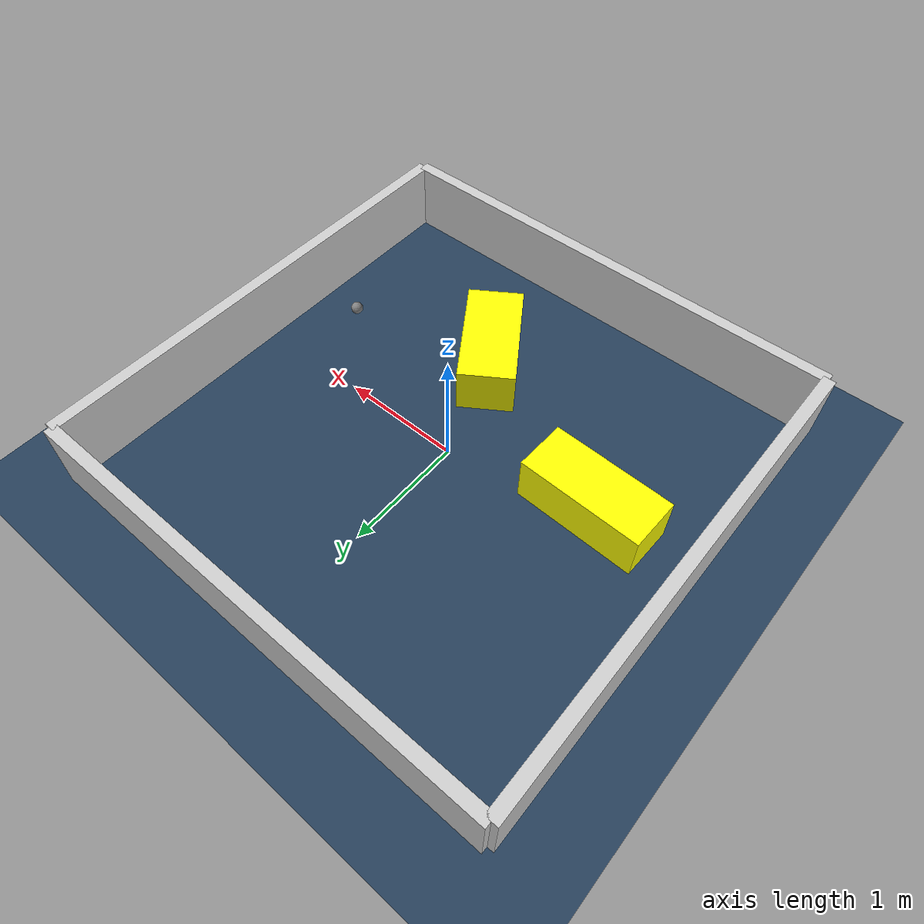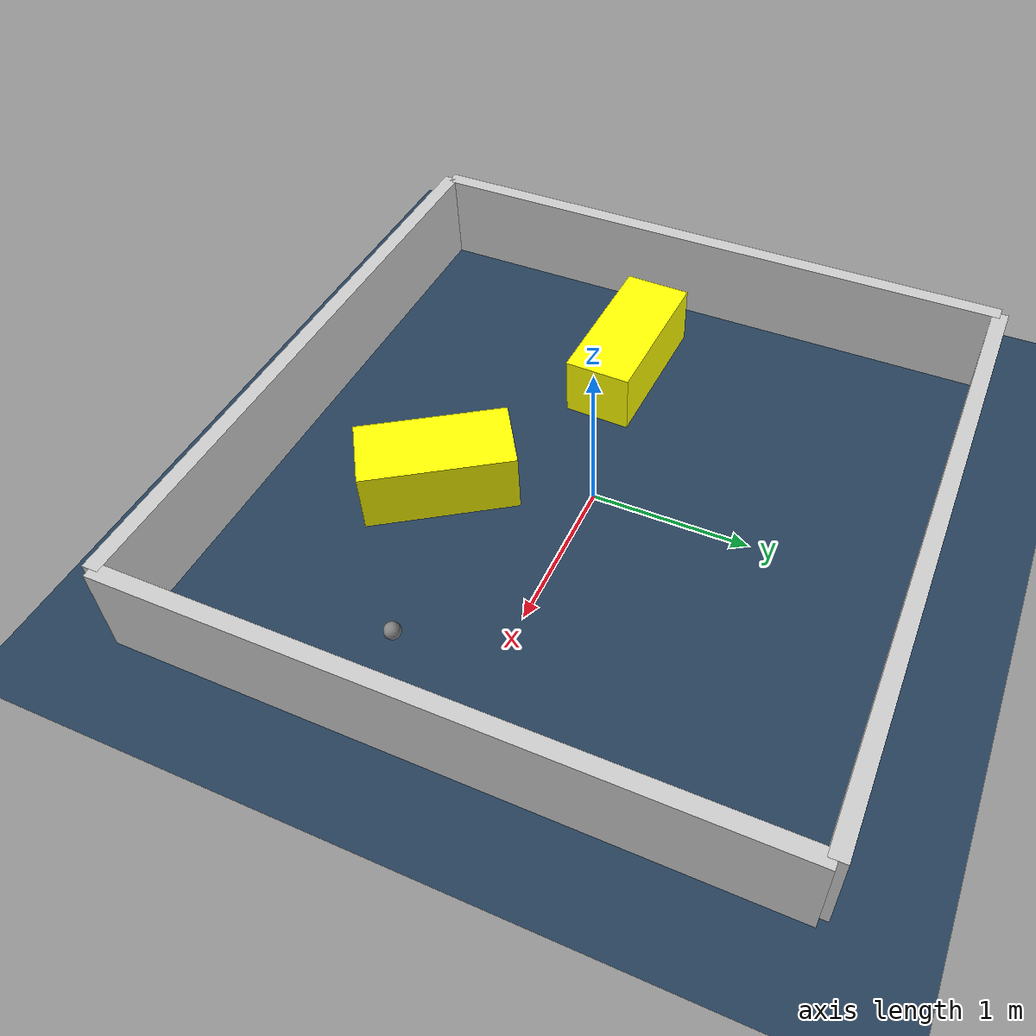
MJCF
<?xml version="1.0" ?>
<mujoco model="generated_environment">
  <option timestep="0.01" integrator="RK4" cone="elliptic"/>
  <default>
    <geom density="1"/>
  </default>
  <asset>
    <texture builtin="gradient" height="3072" rgb1="0.3 0.5 0.7" rgb2="0 0 0" type="skybox" width="512"/>
    <texture builtin="checker" height="300" mark="edge" markrgb="0.8 0.8 0.8" name="groundplane" rgb1="0.2 0.3 0.4" rgb2="0.1 0.2 0.3" type="2d" width="300"/>
    <material name="groundplane" reflectance="0.2" texrepeat="5 5" texture="groundplane" texuniform="true"/>
    <material name="robot" rgba="0.0 1.0 0.0 1"/>
  </asset>
  <worldbody>
    <light dir="0 0 -1" directional="true" pos="0 0 1.5"/>
    <geom condim="4" friction="1.0 0.005 0.001" material="groundplane" name="floor" size="0 0 0.05" type="plane"/>
    <body name="walls">
      <geom name="wall_1" condim="4" pos="-2.0 0.0 0.3" rgba="0.800000011920929 0.800000011920929 0.800000011920929 1.0" size="0.05 2.0 0.3" type="box"/>
      <geom name="wall_2" condim="4" pos="2.0 0.0 0.3" rgba="0.800000011920929 0.800000011920929 0.800000011920929 1.0" size="0.05 2.0 0.3" type="box"/>
      <geom name="wall_3" condim="4" pos="0.0 -2.0 0.3" rgba="0.800000011920929 0.800000011920929 0.800000011920929 1.0" size="2.0 0.05 0.3" type="box"/>
      <geom name="wall_4" condim="4" pos="0.0 2.0 0.3" rgba="0.800000011920929 0.800000011920929 0.800000011920929 1.0" size="2.0 0.05 0.3" type="box"/>
    </body>
    <body name="robot">
      <joint name="joint_x" type="slide" pos="0 0 0" axis="1 0 0"/>
      <joint name="joint_y" type="slide" pos="0 0 0" axis="0 1 0"/>
      <geom name="robot" type="sphere" pos="1.485696340323674 -0.5417354248396793 0.2" size="0.05" mass="5." friction="1.0 0.005 0.0001" condim="4"/>
      <site name="sensor_ball"/>
    </body>
    <body name="obstacle_1_movable">
      <geom name="obstacle_1_movable" condim="4" pos="-1.1562263210399975 -0.24398301918407306 0.2" euler="0 0 88.24749027881401" friction="1.0 0.005 0.001" rgba="1 1 0 1" size="0.21676950070865286 0.5037394522282391 0.2" type="box" mass="0.1"/>
      <joint type="free"/>
    </body>
    <body name="obstacle_2_movable">
      <geom name="obstacle_2_movable" condim="4" pos="0.31516442426205793 -0.9058613744009949 0.2" euler="0 0 303.7150814832777" friction="1.0 0.005 0.001" rgba="1 1 0 1" size="0.47453459983177276 0.23128886192908255 0.2" type="box" mass="0.1"/>
      <joint type="free"/>
    </body>
  </worldbody>
  <actuator>
    <motor name="actuator_x" joint="joint_x" gear="1" ctrlrange="-1 1"/>
    <motor name="actuator_y" joint="joint_y" gear="1" ctrlrange="-1 1"/>
  </actuator>
</mujoco>
